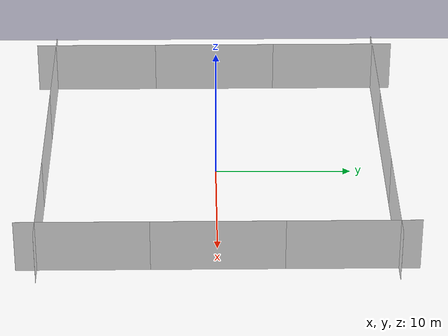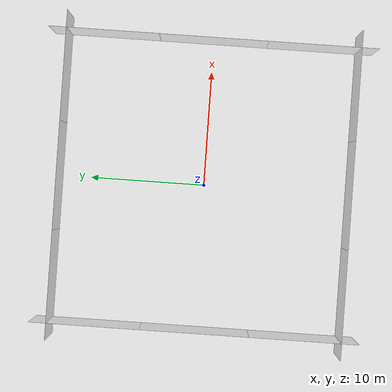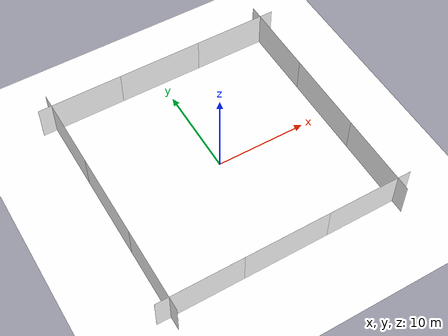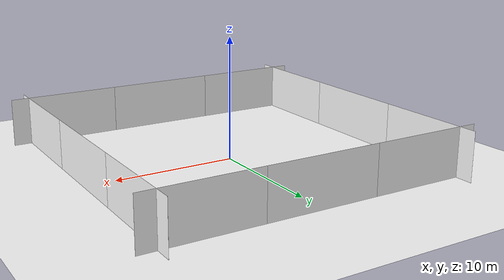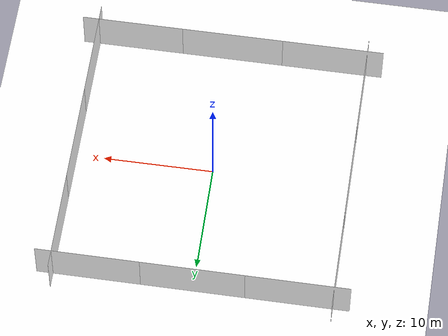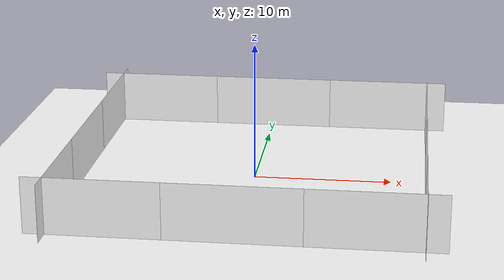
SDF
<sdf version="1.8">
 <world name="large_demo">
  <plugin name="ignition::gazebo::systems::Physics" filename="ignition-gazebo-physics-system"/>
  <plugin name="ignition::gazebo::systems::UserCommands" filename="ignition-gazebo-user-commands-system"/>
  <plugin name="ignition::gazebo::systems::SceneBroadcaster" filename="ignition-gazebo-scene-broadcaster-system"/>
  <plugin name="ignition::gazebo::systems::Contact" filename="ignition-gazebo-contact-system"/>
  <light name="sun" type="directional">
   <cast_shadows>0</cast_shadows>
   <pose>0 0 100 0 -0 0</pose>
   <diffuse>0.8 0.8 0.8 1</diffuse>
   <specular>0.8 0.8 0.8 1</specular>
   <direction>-0.5 0.1 -0.9</direction>
   <intensity>5</intensity>
  </light>
  <gravity>0 0 -9.81</gravity>
  <magnetic_field>6e-06 2.3e-05 -4.2e-05</magnetic_field>
  <atmosphere type="adiabatic"/>
  <physics name="default_physics" type="ode">
   <max_step_size>0.001</max_step_size>
   <real_time_update_rate>1000</real_time_update_rate>
  </physics>
  <scene>
   <ambient>1.0 1.0 1.0 1</ambient>
   <background>0.6 0.8 1.0 1</background>
   <shadows>0</shadows>
   <grid>0</grid>
  </scene>
  <spherical_coordinates>
   <latitude_deg>0.0</latitude_deg>
   <longitude_deg>0.0</longitude_deg>
   <elevation>10.0</elevation>
   <heading_deg>0</heading_deg>
   <surface_model>EARTH_WGS84</surface_model>
  </spherical_coordinates>
  <include><uri>model://forest_plane</uri><name>forest_plane</name></include>
  <model name="ground_collision">
   <static>true</static>
   <link name="link">
    <collision name="collision">
     <geometry><plane><normal>0 0 1</normal><size>500 500</size></plane></geometry>
    </collision>
    <visual name="visual">
     <geometry><plane><normal>0 0 1</normal><size>500 500</size></plane></geometry>
     <material>
      <ambient>0 0 0 0</ambient>
      <diffuse>0 0 0 0</diffuse>
      <specular>0 0 0 0</specular>
      <emissive>0 0 0 0</emissive>
     </material>
     <transparency>1.0</transparency>
    </visual>
   </link>
  </model>
  <include>
   <uri>model://forest_wall</uri>
   <name>forest_wall1</name>
   <pose>12.5 0 2 1.570796 0 -1.570796</pose>
  </include>
  <include>
   <uri>model://forest_wall</uri>
   <name>forest_wall2</name>
   <pose>12.5 -9.32 2 1.570796 0 -1.570796</pose>
  </include>
  <include>
   <uri>model://forest_wall</uri>
   <name>forest_wall3</name>
   <pose>12.5 +9.32 2 1.570796 0 -1.570796</pose>
  </include>
  <include>
   <uri>model://forest_wall</uri>
   <name>forest_wall4</name>
   <pose>-12.5 0 2 1.570796 0 1.570796</pose>
  </include>
  <include>
   <uri>model://forest_wall</uri>
   <name>forest_wall5</name>
   <pose>-12.5 -9.32 2 1.570796 0 1.570796</pose>
  </include>
  <include>
   <uri>model://forest_wall</uri>
   <name>forest_wall6</name>
   <pose>-12.5 +9.32 2 1.570796 0 1.570796</pose>
  </include>
  <include><uri>model://forest_wall</uri><name>forest_wall7</name><pose>0 -12.5 2 1.570796 0 0</pose></include>
  <include>
   <uri>model://forest_wall</uri>
   <name>forest_wall8</name>
   <pose>-9.32 -12.5 2 1.570796 0 0</pose>
  </include>
  <include>
   <uri>model://forest_wall</uri>
   <name>forest_wall9</name>
   <pose>+9.32 -12.5 2 1.570796 0 0</pose>
  </include>
  <include><uri>model://forest_wall</uri><name>forest_wall10</name><pose>0 12.5 2 1.570796 0 0</pose></include>
  <include>
   <uri>model://forest_wall</uri>
   <name>forest_wall11</name>
   <pose>-9.32 12.5 2 1.570796 0 0</pose>
  </include>
  <include>
   <uri>model://forest_wall</uri>
   <name>forest_wall12</name>
   <pose>+9.32 12.5 2 1.570796 0 0</pose>
  </include>
 </world>
</sdf>

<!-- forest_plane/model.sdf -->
<sdf version="1.7">
<model name="grass_plane">
    <static>true</static>
    <link name="link">
        <collision name="collision">
            <geometry>
            <box>
                <normal>0 0 1</normal>
                <size>50 50 0.01</size>
            </box>
            </geometry>
        </collision>
        <visual name="visual">
            <cast_shadows>false</cast_shadows>
            <geometry>
            <plane>
                <normal>0 0 1</normal>
                <size>50 50</size>
            </plane>
            </geometry>
            <material>
                <ambient>1.0 1.0 1.0 1</ambient>
                <diffuse>1.0 1.0 1.0 1</diffuse>
                <pbr>
                    <metal>
                    <albedo_map>
                        model://forest_plane/materials/textures/forest_overhead.png
                    </albedo_map>
                    </metal>
                </pbr>
            </material>
        <plugin filename="ignition-gazebo-thermal-system"
                name="ignition::gazebo::systems::Thermal">
          <temperature>300.15</temperature>
          <emissivity>0.95</emissivity>
        </plugin>
        </visual>
    </link>
</model>
</sdf>

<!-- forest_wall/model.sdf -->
<sdf version="1.7">
<model name="forest_wall">
    <static>true</static>
    <link name="link">
        <thermal>
            <temperature>300.15</temperature>
        </thermal>
        <collision name="collision">
            <geometry>
            <box>
                <normal>0 0 1</normal>
                <size>9.32 4 0.01</size>
            </box>
            </geometry>
        </collision>
        <visual name="visual">
            <cast_shadows>false</cast_shadows>
            <geometry>
            <plane>
                <normal>0 0 1</normal>
                <size>9.32 4</size>
            </plane>
            </geometry>
            <material>
                <diffuse>1.0 1.0 1.0 1</diffuse>
                <pbr>
                    <metal>
                    <albedo_map>
                        model://forest_wall/materials/textures/forest_wall_transparent.png
                    </albedo_map>
                    </metal>
                </pbr>
                <double_sided>true</double_sided>
            </material>
        </visual>
    </link>
</model>
</sdf>
